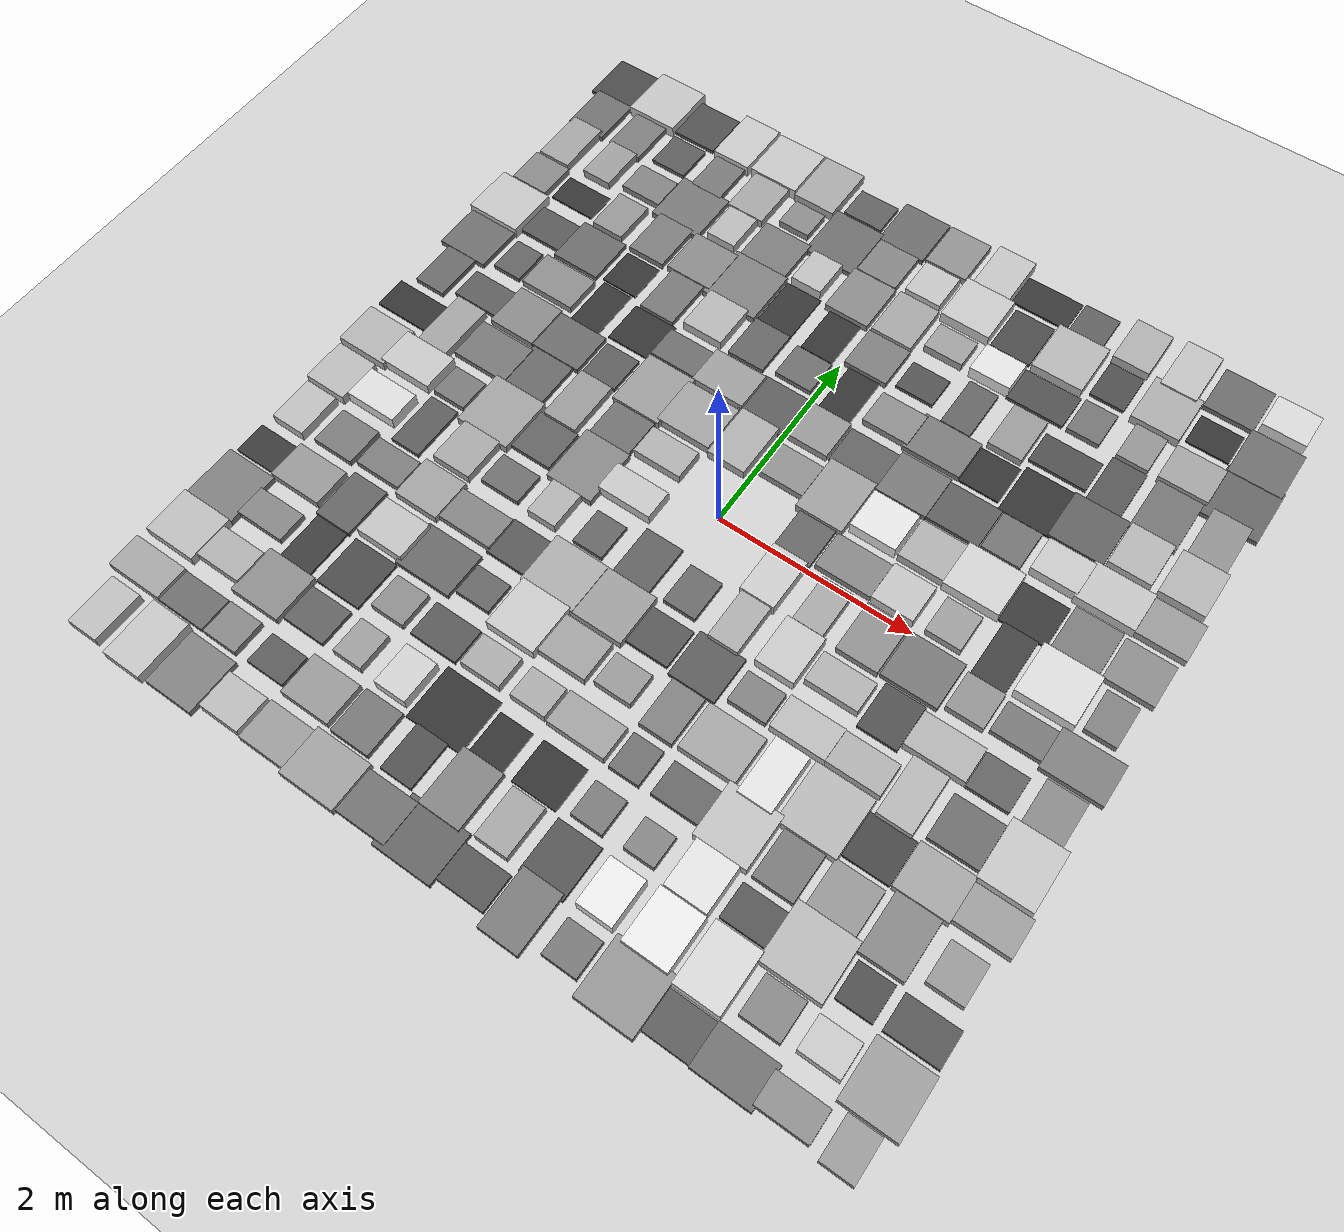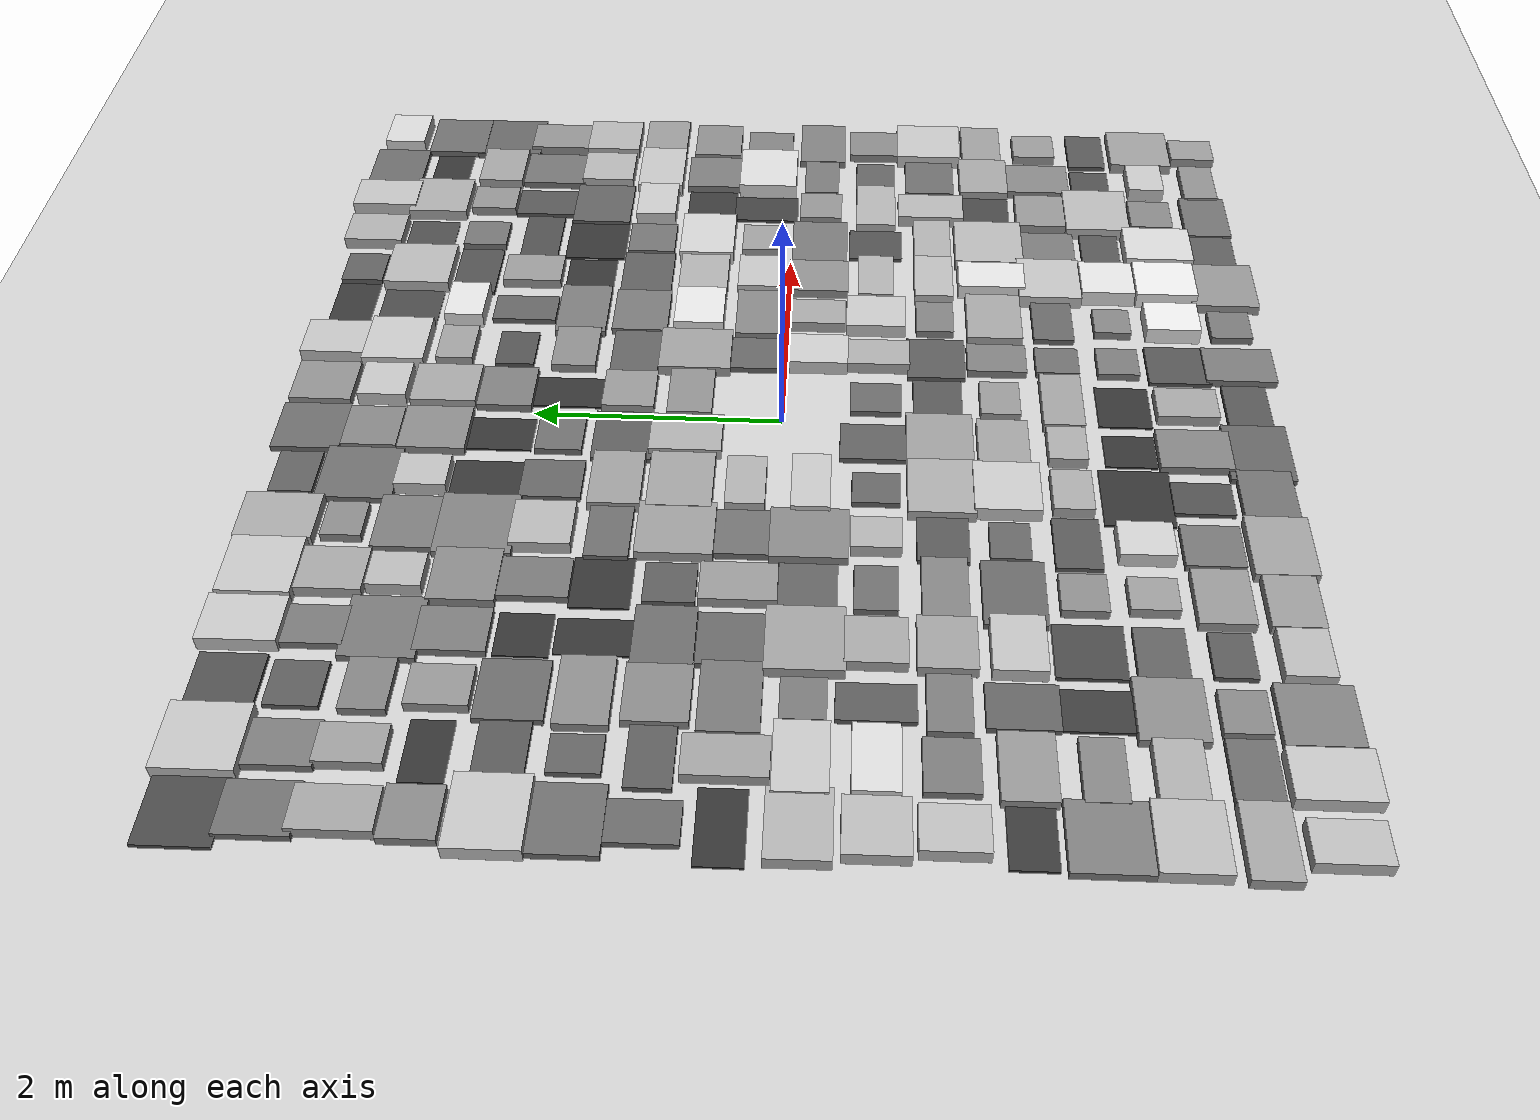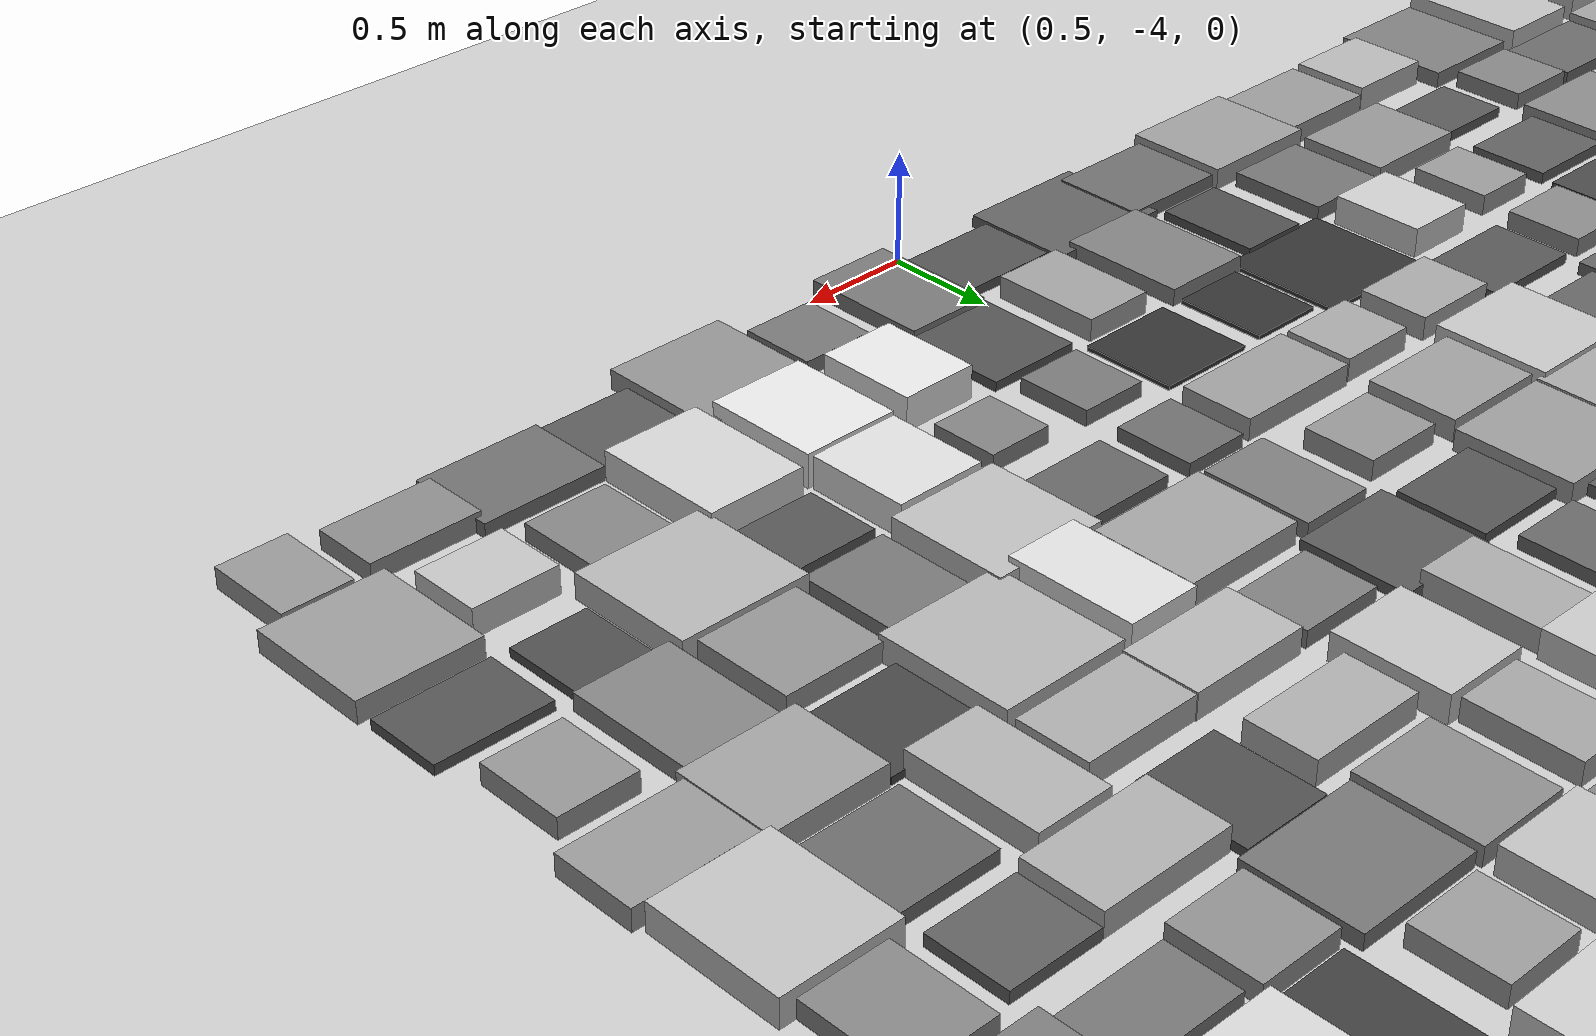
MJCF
<mujoco model="terrain_scene">
  <compiler angle="radian" coordinate="local" inertiafromgeom="true" />
  <option timestep="0.002" gravity="0.0 0.0 -9.81" iterations="50" solver="Newton" />
  <visual>
    <global offwidth="1920" offheight="1080" />
    <quality shadowsize="4096" />
    <headlight ambient="0.4 0.4 0.4" diffuse="0.6 0.6 0.6" />
  </visual>
  <asset>
    <texture name="grid_texture" type="2d" builtin="checker" rgb1="0.9 0.9 0.9" rgb2="0.7 0.7 0.7" width="512" height="512" />
    <material name="grid_material" texture="grid_texture" texrepeat="10 10" reflectance="0.1" />
  </asset>
  <worldbody>
    <geom name="ground" type="plane" size="8.0 8.0 0.1" pos="0 0 0" rgba="0.8 0.8 0.8 1.0" friction="1.0 0.005 0.0001" />
    <geom name="box_0" type="box" size="0.1643 0.2589 0.0585" pos="-3.7500 -3.7500 0.0585" rgba="0.723 0.723 0.723 1.000" friction="1.0 0.005 0.0001" />
    <geom name="box_1" type="box" size="0.2904 0.1706 0.0499" pos="-3.7500 -3.2500 0.0499" rgba="0.630 0.630 0.630 1.000" friction="1.0 0.005 0.0001" />
    <geom name="box_2" type="box" size="0.2701 0.2391 0.0580" pos="-3.7500 -2.7500 0.0580" rgba="0.717 0.717 0.717 1.000" friction="1.0 0.005 0.0001" />
    <geom name="box_3" type="box" size="0.2693 0.2919 0.0367" pos="-3.7500 -2.2500 0.0367" rgba="0.487 0.487 0.487 1.000" friction="1.0 0.005 0.0001" />
    <geom name="box_4" type="box" size="0.2385 0.1643 0.0123" pos="-3.7500 -1.7500 0.0123" rgba="0.225 0.225 0.225 1.000" friction="1.0 0.005 0.0001" />
    <geom name="box_5" type="box" size="0.1757 0.2347 0.0586" pos="-3.7500 -1.2500 0.0586" rgba="0.723 0.723 0.723 1.000" friction="1.0 0.005 0.0001" />
    <geom name="box_6" type="box" size="0.2199 0.2284 0.0575" pos="-3.7500 -0.7500 0.0575" rgba="0.711 0.711 0.711 1.000" friction="1.0 0.005 0.0001" />
    <geom name="box_7" type="box" size="0.2699 0.2238 0.0547" pos="-3.7500 -0.2500 0.0547" rgba="0.682 0.682 0.682 1.000" friction="1.0 0.005 0.0001" />
    <geom name="box_8" type="box" size="0.2897 0.1680 0.0100" pos="-3.7500 0.2500 0.0100" rgba="0.200 0.200 0.200 1.000" friction="1.0 0.005 0.0001" />
    <geom name="box_9" type="box" size="0.1632 0.2487 0.0288" pos="-3.7500 0.7500 0.0288" rgba="0.402 0.402 0.402 1.000" friction="1.0 0.005 0.0001" />
    <geom name="box_10" type="box" size="0.2661 0.2507 0.0306" pos="-3.7500 1.2500 0.0306" rgba="0.422 0.422 0.422 1.000" friction="1.0 0.005 0.0001" />
    <geom name="box_11" type="box" size="0.2848 0.2644 0.0615" pos="-3.7500 1.7500 0.0615" rgba="0.755 0.755 0.755 1.000" friction="1.0 0.005 0.0001" />
    <geom name="box_12" type="box" size="0.2046 0.1972 0.0397" pos="-3.7500 2.2500 0.0397" rgba="0.520 0.520 0.520 1.000" friction="1.0 0.005 0.0001" />
    <geom name="box_13" type="box" size="0.1722 0.2904 0.0493" pos="-3.7500 2.7500 0.0493" rgba="0.624 0.624 0.624 1.000" friction="1.0 0.005 0.0001" />
    <geom name="box_14" type="box" size="0.2075 0.2595 0.0313" pos="-3.7500 3.2500 0.0313" rgba="0.429 0.429 0.429 1.000" friction="1.0 0.005 0.0001" />
    <geom name="box_15" type="box" size="0.2904 0.2670 0.0176" pos="-3.7500 3.7500 0.0176" rgba="0.282 0.282 0.282 1.000" friction="1.0 0.005 0.0001" />
    <geom name="box_16" type="box" size="0.2065 0.2980 0.0613" pos="-3.2500 -3.7500 0.0613" rgba="0.752 0.752 0.752 1.000" friction="1.0 0.005 0.0001" />
    <geom name="box_17" type="box" size="0.2927 0.1678 0.0300" pos="-3.2500 -3.2500 0.0300" rgba="0.415 0.415 0.415 1.000" friction="1.0 0.005 0.0001" />
    <geom name="box_18" type="box" size="0.2456 0.1683 0.0534" pos="-3.2500 -2.7500 0.0534" rgba="0.667 0.667 0.667 1.000" friction="1.0 0.005 0.0001" />
    <geom name="box_19" type="box" size="0.2529 0.1518 0.0391" pos="-3.2500 -2.2500 0.0391" rgba="0.513 0.513 0.513 1.000" friction="1.0 0.005 0.0001" />
    <geom name="box_20" type="box" size="0.2738 0.1943 0.0449" pos="-3.2500 -1.7500 0.0449" rgba="0.576 0.576 0.576 1.000" friction="1.0 0.005 0.0001" />
    <geom name="box_21" type="box" size="0.2163 0.1953 0.0349" pos="-3.2500 -1.2500 0.0349" rgba="0.469 0.469 0.469 1.000" friction="1.0 0.005 0.0001" />
    <geom name="box_22" type="box" size="0.2672 0.1666 0.0696" pos="-3.2500 -0.7500 0.0696" rgba="0.842 0.842 0.842 1.000" friction="1.0 0.005 0.0001" />
    <geom name="box_23" type="box" size="0.2819 0.1926 0.0617" pos="-3.2500 -0.2500 0.0617" rgba="0.757 0.757 0.757 1.000" friction="1.0 0.005 0.0001" />
    <geom name="box_24" type="box" size="0.1660 0.2999 0.0493" pos="-3.2500 0.2500 0.0493" rgba="0.623 0.623 0.623 1.000" friction="1.0 0.005 0.0001" />
    <geom name="box_25" type="box" size="0.2475 0.1636 0.0245" pos="-3.2500 0.7500 0.0245" rgba="0.356 0.356 0.356 1.000" friction="1.0 0.005 0.0001" />
    <geom name="box_26" type="box" size="0.1543 0.1861 0.0264" pos="-3.2500 1.2500 0.0264" rgba="0.377 0.377 0.377 1.000" friction="1.0 0.005 0.0001" />
    <geom name="box_27" type="box" size="0.2665 0.1797 0.0227" pos="-3.2500 1.7500 0.0227" rgba="0.337 0.337 0.337 1.000" friction="1.0 0.005 0.0001" />
    <geom name="box_28" type="box" size="0.2484 0.1554 0.0100" pos="-3.2500 2.2500 0.0100" rgba="0.200 0.200 0.200 1.000" friction="1.0 0.005 0.0001" />
    <geom name="box_29" type="box" size="0.1577 0.2409 0.0474" pos="-3.2500 2.7500 0.0474" rgba="0.602 0.602 0.602 1.000" friction="1.0 0.005 0.0001" />
    <geom name="box_30" type="box" size="0.1858 0.2774 0.0355" pos="-3.2500 3.2500 0.0355" rgba="0.474 0.474 0.474 1.000" friction="1.0 0.005 0.0001" />
    <geom name="box_31" type="box" size="0.2701 0.2892 0.0608" pos="-3.2500 3.7500 0.0608" rgba="0.747 0.747 0.747 1.000" friction="1.0 0.005 0.0001" />
    <geom name="box_32" type="box" size="0.2547 0.2757 0.0374" pos="-2.7500 -3.7500 0.0374" rgba="0.495 0.495 0.495 1.000" friction="1.0 0.005 0.0001" />
    <geom name="box_33" type="box" size="0.1803 0.1687 0.0393" pos="-2.7500 -3.2500 0.0393" rgba="0.515 0.515 0.515 1.000" friction="1.0 0.005 0.0001" />
    <geom name="box_34" type="box" size="0.2618 0.2445 0.0416" pos="-2.7500 -2.7500 0.0416" rgba="0.540 0.540 0.540 1.000" friction="1.0 0.005 0.0001" />
    <geom name="box_35" type="box" size="0.1733 0.2602 0.0134" pos="-2.7500 -2.2500 0.0134" rgba="0.237 0.237 0.237 1.000" friction="1.0 0.005 0.0001" />
    <geom name="box_36" type="box" size="0.1906 0.2565 0.0266" pos="-2.7500 -1.7500 0.0266" rgba="0.379 0.379 0.379 1.000" friction="1.0 0.005 0.0001" />
    <geom name="box_37" type="box" size="0.2417 0.1582 0.0354" pos="-2.7500 -1.2500 0.0354" rgba="0.473 0.473 0.473 1.000" friction="1.0 0.005 0.0001" />
    <geom name="box_38" type="box" size="0.1564 0.2826 0.0237" pos="-2.7500 -0.7500 0.0237" rgba="0.348 0.348 0.348 1.000" friction="1.0 0.005 0.0001" />
    <geom name="box_39" type="box" size="0.1760 0.1638 0.0343" pos="-2.7500 -0.2500 0.0343" rgba="0.462 0.462 0.462 1.000" friction="1.0 0.005 0.0001" />
    <geom name="box_40" type="box" size="0.2970 0.2188 0.0339" pos="-2.7500 0.2500 0.0339" rgba="0.457 0.457 0.457 1.000" friction="1.0 0.005 0.0001" />
    <geom name="box_41" type="box" size="0.2455 0.2359 0.0401" pos="-2.7500 0.7500 0.0401" rgba="0.525 0.525 0.525 1.000" friction="1.0 0.005 0.0001" />
    <geom name="box_42" type="box" size="0.2919 0.1952 0.0416" pos="-2.7500 1.2500 0.0416" rgba="0.540 0.540 0.540 1.000" friction="1.0 0.005 0.0001" />
    <geom name="box_43" type="box" size="0.2550 0.2474 0.0292" pos="-2.7500 1.7500 0.0292" rgba="0.407 0.407 0.407 1.000" friction="1.0 0.005 0.0001" />
    <geom name="box_44" type="box" size="0.1723 0.2263 0.0444" pos="-2.7500 2.2500 0.0444" rgba="0.570 0.570 0.570 1.000" friction="1.0 0.005 0.0001" />
    <geom name="box_45" type="box" size="0.2211 0.1679 0.0378" pos="-2.7500 2.7500 0.0378" rgba="0.500 0.500 0.500 1.000" friction="1.0 0.005 0.0001" />
    <geom name="box_46" type="box" size="0.1917 0.1957 0.0241" pos="-2.7500 3.2500 0.0241" rgba="0.352 0.352 0.352 1.000" friction="1.0 0.005 0.0001" />
    <geom name="box_47" type="box" size="0.2416 0.2452 0.0200" pos="-2.7500 3.7500 0.0200" rgba="0.308 0.308 0.308 1.000" friction="1.0 0.005 0.0001" />
    <geom name="box_48" type="box" size="0.2113 0.1826 0.0575" pos="-2.2500 -3.7500 0.0575" rgba="0.711 0.711 0.711 1.000" friction="1.0 0.005 0.0001" />
    <geom name="box_49" type="box" size="0.1976 0.1554 0.0235" pos="-2.2500 -3.2500 0.0235" rgba="0.345 0.345 0.345 1.000" friction="1.0 0.005 0.0001" />
    <geom name="box_50" type="box" size="0.2211 0.1838 0.0261" pos="-2.2500 -2.7500 0.0261" rgba="0.373 0.373 0.373 1.000" friction="1.0 0.005 0.0001" />
    <geom name="box_51" type="box" size="0.2349 0.2553 0.0179" pos="-2.2500 -2.2500 0.0179" rgba="0.285 0.285 0.285 1.000" friction="1.0 0.005 0.0001" />
    <geom name="box_52" type="box" size="0.2479 0.1974 0.0601" pos="-2.2500 -1.7500 0.0601" rgba="0.740 0.740 0.740 1.000" friction="1.0 0.005 0.0001" />
    <geom name="box_53" type="box" size="0.2324 0.2147 0.0488" pos="-2.2500 -1.2500 0.0488" rgba="0.618 0.618 0.618 1.000" friction="1.0 0.005 0.0001" />
    <geom name="box_54" type="box" size="0.2041 0.2269 0.0509" pos="-2.2500 -0.7500 0.0509" rgba="0.640 0.640 0.640 1.000" friction="1.0 0.005 0.0001" />
    <geom name="box_55" type="box" size="0.2830 0.2882 0.0488" pos="-2.2500 -0.2500 0.0488" rgba="0.617 0.617 0.617 1.000" friction="1.0 0.005 0.0001" />
    <geom name="box_56" type="box" size="0.2280 0.2700 0.0284" pos="-2.2500 0.2500 0.0284" rgba="0.398 0.398 0.398 1.000" friction="1.0 0.005 0.0001" />
    <geom name="box_57" type="box" size="0.2756 0.2241 0.0297" pos="-2.2500 0.7500 0.0297" rgba="0.412 0.412 0.412 1.000" friction="1.0 0.005 0.0001" />
    <geom name="box_58" type="box" size="0.1608 0.2763 0.0100" pos="-2.2500 1.2500 0.0100" rgba="0.200 0.200 0.200 1.000" friction="1.0 0.005 0.0001" />
    <geom name="box_59" type="box" size="0.1921 0.2001 0.0100" pos="-2.2500 1.7500 0.0100" rgba="0.200 0.200 0.200 1.000" friction="1.0 0.005 0.0001" />
    <geom name="box_60" type="box" size="0.1971 0.2614 0.0352" pos="-2.2500 2.2500 0.0352" rgba="0.471 0.471 0.471 1.000" friction="1.0 0.005 0.0001" />
    <geom name="box_61" type="box" size="0.2741 0.2785 0.0341" pos="-2.2500 2.7500 0.0341" rgba="0.459 0.459 0.459 1.000" friction="1.0 0.005 0.0001" />
    <geom name="box_62" type="box" size="0.1730 0.2401 0.0343" pos="-2.2500 3.2500 0.0343" rgba="0.461 0.461 0.461 1.000" friction="1.0 0.005 0.0001" />
    <geom name="box_63" type="box" size="0.2047 0.2938 0.0623" pos="-2.2500 3.7500 0.0623" rgba="0.763 0.763 0.763 1.000" friction="1.0 0.005 0.0001" />
    <geom name="box_64" type="box" size="0.2658 0.1966 0.0468" pos="-1.7500 -3.7500 0.0468" rgba="0.596 0.596 0.596 1.000" friction="1.0 0.005 0.0001" />
    <geom name="box_65" type="box" size="0.2558 0.2082 0.0455" pos="-1.7500 -3.2500 0.0455" rgba="0.582 0.582 0.582 1.000" friction="1.0 0.005 0.0001" />
    <geom name="box_66" type="box" size="0.1516 0.1814 0.0471" pos="-1.7500 -2.7500 0.0471" rgba="0.599 0.599 0.599 1.000" friction="1.0 0.005 0.0001" />
    <geom name="box_67" type="box" size="0.1746 0.1749 0.0415" pos="-1.7500 -2.2500 0.0415" rgba="0.539 0.539 0.539 1.000" friction="1.0 0.005 0.0001" />
    <geom name="box_68" type="box" size="0.2984 0.2334 0.0284" pos="-1.7500 -1.7500 0.0284" rgba="0.398 0.398 0.398 1.000" friction="1.0 0.005 0.0001" />
    <geom name="box_69" type="box" size="0.2985 0.1712 0.0383" pos="-1.7500 -1.2500 0.0383" rgba="0.505 0.505 0.505 1.000" friction="1.0 0.005 0.0001" />
    <geom name="box_70" type="box" size="0.2089 0.1620 0.0305" pos="-1.7500 -0.7500 0.0305" rgba="0.421 0.421 0.421 1.000" friction="1.0 0.005 0.0001" />
    <geom name="box_71" type="box" size="0.2151 0.2204 0.0265" pos="-1.7500 -0.2500 0.0265" rgba="0.378 0.378 0.378 1.000" friction="1.0 0.005 0.0001" />
    <geom name="box_72" type="box" size="0.1771 0.2861 0.0460" pos="-1.7500 0.2500 0.0460" rgba="0.588 0.588 0.588 1.000" friction="1.0 0.005 0.0001" />
    <geom name="box_73" type="box" size="0.1849 0.1938 0.0245" pos="-1.7500 0.7500 0.0245" rgba="0.356 0.356 0.356 1.000" friction="1.0 0.005 0.0001" />
    <geom name="box_74" type="box" size="0.2380 0.2240 0.0100" pos="-1.7500 1.2500 0.0100" rgba="0.200 0.200 0.200 1.000" friction="1.0 0.005 0.0001" />
    <geom name="box_75" type="box" size="0.1866 0.2765 0.0337" pos="-1.7500 1.7500 0.0337" rgba="0.455 0.455 0.455 1.000" friction="1.0 0.005 0.0001" />
    <geom name="box_76" type="box" size="0.2474 0.2505 0.0402" pos="-1.7500 2.2500 0.0402" rgba="0.525 0.525 0.525 1.000" friction="1.0 0.005 0.0001" />
    <geom name="box_77" type="box" size="0.1587 0.2050 0.0569" pos="-1.7500 2.7500 0.0569" rgba="0.705 0.705 0.705 1.000" friction="1.0 0.005 0.0001" />
    <geom name="box_78" type="box" size="0.2008 0.2767 0.0500" pos="-1.7500 3.2500 0.0500" rgba="0.631 0.631 0.631 1.000" friction="1.0 0.005 0.0001" />
    <geom name="box_79" type="box" size="0.2653 0.2778 0.0613" pos="-1.7500 3.7500 0.0613" rgba="0.752 0.752 0.752 1.000" friction="1.0 0.005 0.0001" />
    <geom name="box_80" type="box" size="0.2864 0.2381 0.0484" pos="-1.2500 -3.7500 0.0484" rgba="0.614 0.614 0.614 1.000" friction="1.0 0.005 0.0001" />
    <geom name="box_81" type="box" size="0.2011 0.2248 0.0334" pos="-1.2500 -3.2500 0.0334" rgba="0.452 0.452 0.452 1.000" friction="1.0 0.005 0.0001" />
    <geom name="box_82" type="box" size="0.1657 0.2098 0.0657" pos="-1.2500 -2.7500 0.0657" rgba="0.799 0.799 0.799 1.000" friction="1.0 0.005 0.0001" />
    <geom name="box_83" type="box" size="0.2446 0.1766 0.0228" pos="-1.2500 -2.2500 0.0228" rgba="0.338 0.338 0.338 1.000" friction="1.0 0.005 0.0001" />
    <geom name="box_84" type="box" size="0.1787 0.1537 0.0278" pos="-1.2500 -1.7500 0.0278" rgba="0.391 0.391 0.391 1.000" friction="1.0 0.005 0.0001" />
    <geom name="box_85" type="box" size="0.2172 0.1961 0.0228" pos="-1.2500 -1.2500 0.0228" rgba="0.337 0.337 0.337 1.000" friction="1.0 0.005 0.0001" />
    <geom name="box_86" type="box" size="0.1511 0.1917 0.0546" pos="-1.2500 -0.7500 0.0546" rgba="0.680 0.680 0.680 1.000" friction="1.0 0.005 0.0001" />
    <geom name="box_87" type="box" size="0.2451 0.2973 0.0398" pos="-1.2500 -0.2500 0.0398" rgba="0.521 0.521 0.521 1.000" friction="1.0 0.005 0.0001" />
    <geom name="box_88" type="box" size="0.2216 0.2642 0.0315" pos="-1.2500 0.2500 0.0315" rgba="0.431 0.431 0.431 1.000" friction="1.0 0.005 0.0001" />
    <geom name="box_89" type="box" size="0.2581 0.2945 0.0471" pos="-1.2500 0.7500 0.0471" rgba="0.600 0.600 0.600 1.000" friction="1.0 0.005 0.0001" />
    <geom name="box_90" type="box" size="0.2800 0.1671 0.0300" pos="-1.2500 1.2500 0.0300" rgba="0.415 0.415 0.415 1.000" friction="1.0 0.005 0.0001" />
    <geom name="box_91" type="box" size="0.2160 0.2330 0.0559" pos="-1.2500 1.7500 0.0559" rgba="0.694 0.694 0.694 1.000" friction="1.0 0.005 0.0001" />
    <geom name="box_92" type="box" size="0.2955 0.2977 0.0368" pos="-1.2500 2.2500 0.0368" rgba="0.489 0.489 0.489 1.000" friction="1.0 0.005 0.0001" />
    <geom name="box_93" type="box" size="0.2601 0.2625 0.0355" pos="-1.2500 2.7500 0.0355" rgba="0.474 0.474 0.474 1.000" friction="1.0 0.005 0.0001" />
    <geom name="box_94" type="box" size="0.1686 0.1561 0.0405" pos="-1.2500 3.2500 0.0405" rgba="0.529 0.529 0.529 1.000" friction="1.0 0.005 0.0001" />
    <geom name="box_95" type="box" size="0.2235 0.2978 0.0511" pos="-1.2500 3.7500 0.0511" rgba="0.642 0.642 0.642 1.000" friction="1.0 0.005 0.0001" />
    <geom name="box_96" type="box" size="0.2967 0.2117 0.0315" pos="-0.7500 -3.7500 0.0315" rgba="0.432 0.432 0.432 1.000" friction="1.0 0.005 0.0001" />
    <geom name="box_97" type="box" size="0.1627 0.2333 0.0200" pos="-0.7500 -3.2500 0.0200" rgba="0.308 0.308 0.308 1.000" friction="1.0 0.005 0.0001" />
    <geom name="box_98" type="box" size="0.2887 0.2734 0.0100" pos="-0.7500 -2.7500 0.0100" rgba="0.200 0.200 0.200 1.000" friction="1.0 0.005 0.0001" />
    <geom name="box_99" type="box" size="0.2059 0.1573 0.0521" pos="-0.7500 -2.2500 0.0521" rgba="0.654 0.654 0.654 1.000" friction="1.0 0.005 0.0001" />
    <geom name="box_100" type="box" size="0.2513 0.2570 0.0629" pos="-0.7500 -1.7500 0.0629" rgba="0.770 0.770 0.770 1.000" friction="1.0 0.005 0.0001" />
    <geom name="box_101" type="box" size="0.2798 0.2609 0.0523" pos="-0.7500 -1.2500 0.0523" rgba="0.656 0.656 0.656 1.000" friction="1.0 0.005 0.0001" />
    <geom name="box_102" type="box" size="0.1573 0.1852 0.0271" pos="-0.7500 -0.7500 0.0271" rgba="0.384 0.384 0.384 1.000" friction="1.0 0.005 0.0001" />
    <geom name="box_103" type="box" size="0.2787 0.1507 0.0619" pos="-0.7500 -0.2500 0.0619" rgba="0.759 0.759 0.759 1.000" friction="1.0 0.005 0.0001" />
    <geom name="box_104" type="box" size="0.2516 0.1544 0.0535" pos="-0.7500 0.2500 0.0535" rgba="0.668 0.668 0.668 1.000" friction="1.0 0.005 0.0001" />
    <geom name="box_105" type="box" size="0.2843 0.2507 0.0488" pos="-0.7500 0.7500 0.0488" rgba="0.618 0.618 0.618 1.000" friction="1.0 0.005 0.0001" />
    <geom name="box_106" type="box" size="0.2779 0.2022 0.0473" pos="-0.7500 1.2500 0.0473" rgba="0.602 0.602 0.602 1.000" friction="1.0 0.005 0.0001" />
    <geom name="box_107" type="box" size="0.1948 0.2385 0.0271" pos="-0.7500 1.7500 0.0271" rgba="0.384 0.384 0.384 1.000" friction="1.0 0.005 0.0001" />
    <geom name="box_108" type="box" size="0.1912 0.2830 0.0108" pos="-0.7500 2.2500 0.0108" rgba="0.208 0.208 0.208 1.000" friction="1.0 0.005 0.0001" />
    <geom name="box_109" type="box" size="0.1627 0.2013 0.0590" pos="-0.7500 2.7500 0.0590" rgba="0.728 0.728 0.728 1.000" friction="1.0 0.005 0.0001" />
    <geom name="box_110" type="box" size="0.2711 0.2998 0.0305" pos="-0.7500 3.2500 0.0305" rgba="0.420 0.420 0.420 1.000" friction="1.0 0.005 0.0001" />
    <geom name="box_111" type="box" size="0.2112 0.1705 0.0255" pos="-0.7500 3.7500 0.0255" rgba="0.367 0.367 0.367 1.000" friction="1.0 0.005 0.0001" />
    <geom name="box_112" type="box" size="0.2996 0.2551 0.0274" pos="-0.2500 -3.7500 0.0274" rgba="0.387 0.387 0.387 1.000" friction="1.0 0.005 0.0001" />
    <geom name="box_113" type="box" size="0.2089 0.2873 0.0383" pos="-0.2500 -3.2500 0.0383" rgba="0.505 0.505 0.505 1.000" friction="1.0 0.005 0.0001" />
    <geom name="box_114" type="box" size="0.1702 0.2048 0.0100" pos="-0.2500 -2.7500 0.0100" rgba="0.200 0.200 0.200 1.000" friction="1.0 0.005 0.0001" />
    <geom name="box_115" type="box" size="0.1803 0.1527 0.0522" pos="-0.2500 -2.2500 0.0522" rgba="0.654 0.654 0.654 1.000" friction="1.0 0.005 0.0001" />
    <geom name="box_116" type="box" size="0.2452 0.2015 0.0487" pos="-0.2500 -1.7500 0.0487" rgba="0.617 0.617 0.617 1.000" friction="1.0 0.005 0.0001" />
    <geom name="box_117" type="box" size="0.2939 0.2628 0.0477" pos="-0.2500 -1.2500 0.0477" rgba="0.606 0.606 0.606 1.000" friction="1.0 0.005 0.0001" />
    <geom name="box_118" type="box" size="0.1927 0.2845 0.0256" pos="-0.2500 -0.7500 0.0256" rgba="0.368 0.368 0.368 1.000" friction="1.0 0.005 0.0001" />
    <geom name="box_119" type="box" size="0.1988 0.2864 0.0534" pos="-0.2500 0.7500 0.0534" rgba="0.667 0.667 0.667 1.000" friction="1.0 0.005 0.0001" />
    <geom name="box_120" type="box" size="0.2613 0.2386 0.0244" pos="-0.2500 1.2500 0.0244" rgba="0.356 0.356 0.356 1.000" friction="1.0 0.005 0.0001" />
    <geom name="box_121" type="box" size="0.1949 0.1862 0.0304" pos="-0.2500 1.7500 0.0304" rgba="0.420 0.420 0.420 1.000" friction="1.0 0.005 0.0001" />
    <geom name="box_122" type="box" size="0.1733 0.2811 0.0100" pos="-0.2500 2.2500 0.0100" rgba="0.200 0.200 0.200 1.000" friction="1.0 0.005 0.0001" />
    <geom name="box_123" type="box" size="0.2342 0.2688 0.0406" pos="-0.2500 2.7500 0.0406" rgba="0.529 0.529 0.529 1.000" friction="1.0 0.005 0.0001" />
    <geom name="box_124" type="box" size="0.2158 0.2214 0.0386" pos="-0.2500 3.2500 0.0386" rgba="0.508 0.508 0.508 1.000" friction="1.0 0.005 0.0001" />
    <geom name="box_125" type="box" size="0.2512 0.2722 0.0295" pos="-0.2500 3.7500 0.0295" rgba="0.410 0.410 0.410 1.000" friction="1.0 0.005 0.0001" />
    <geom name="box_126" type="box" size="0.2681 0.1778 0.0217" pos="0.2500 -3.7500 0.0217" rgba="0.326 0.326 0.326 1.000" friction="1.0 0.005 0.0001" />
    <geom name="box_127" type="box" size="0.1653 0.2479 0.0498" pos="0.2500 -3.2500 0.0498" rgba="0.629 0.629 0.629 1.000" friction="1.0 0.005 0.0001" />
    <geom name="box_128" type="box" size="0.2269 0.2149 0.0100" pos="0.2500 -2.7500 0.0100" rgba="0.200 0.200 0.200 1.000" friction="1.0 0.005 0.0001" />
    <geom name="box_129" type="box" size="0.2940 0.1655 0.0488" pos="0.2500 -2.2500 0.0488" rgba="0.618 0.618 0.618 1.000" friction="1.0 0.005 0.0001" />
    <geom name="box_130" type="box" size="0.1869 0.1598 0.0456" pos="0.2500 -1.7500 0.0456" rgba="0.584 0.584 0.584 1.000" friction="1.0 0.005 0.0001" />
    <geom name="box_131" type="box" size="0.2274 0.1969 0.0222" pos="0.2500 -1.2500 0.0222" rgba="0.332 0.332 0.332 1.000" friction="1.0 0.005 0.0001" />
    <geom name="box_132" type="box" size="0.1667 0.2077 0.0288" pos="0.2500 -0.7500 0.0288" rgba="0.402 0.402 0.402 1.000" friction="1.0 0.005 0.0001" />
    <geom name="box_133" type="box" size="0.2547 0.1811 0.0427" pos="0.2500 0.7500 0.0427" rgba="0.552 0.552 0.552 1.000" friction="1.0 0.005 0.0001" />
    <geom name="box_134" type="box" size="0.2091 0.2125 0.0450" pos="0.2500 1.2500 0.0450" rgba="0.577 0.577 0.577 1.000" friction="1.0 0.005 0.0001" />
    <geom name="box_135" type="box" size="0.1668 0.2794 0.0100" pos="0.2500 1.7500 0.0100" rgba="0.200 0.200 0.200 1.000" friction="1.0 0.005 0.0001" />
    <geom name="box_136" type="box" size="0.2262 0.2234 0.0360" pos="0.2500 2.2500 0.0360" rgba="0.480 0.480 0.480 1.000" friction="1.0 0.005 0.0001" />
    <geom name="box_137" type="box" size="0.2147 0.2671 0.0500" pos="0.2500 2.7500 0.0500" rgba="0.631 0.631 0.631 1.000" friction="1.0 0.005 0.0001" />
    <geom name="box_138" type="box" size="0.1891 0.1984 0.0608" pos="0.2500 3.2500 0.0608" rgba="0.747 0.747 0.747 1.000" friction="1.0 0.005 0.0001" />
    <geom name="box_139" type="box" size="0.2220 0.2525 0.0427" pos="0.2500 3.7500 0.0427" rgba="0.552 0.552 0.552 1.000" friction="1.0 0.005 0.0001" />
    <geom name="box_140" type="box" size="0.1996 0.2896 0.0348" pos="0.7500 -3.7500 0.0348" rgba="0.467 0.467 0.467 1.000" friction="1.0 0.005 0.0001" />
    <geom name="box_141" type="box" size="0.2191 0.2567 0.0214" pos="0.7500 -3.2500 0.0214" rgba="0.323 0.323 0.323 1.000" friction="1.0 0.005 0.0001" />
    <geom name="box_142" type="box" size="0.1571 0.1707 0.0349" pos="0.7500 -2.7500 0.0349" rgba="0.468 0.468 0.468 1.000" friction="1.0 0.005 0.0001" />
    <geom name="box_143" type="box" size="0.1514 0.1782 0.0309" pos="0.7500 -2.2500 0.0309" rgba="0.425 0.425 0.425 1.000" friction="1.0 0.005 0.0001" />
    <geom name="box_144" type="box" size="0.1666 0.2430 0.0370" pos="0.7500 -1.7500 0.0370" rgba="0.491 0.491 0.491 1.000" friction="1.0 0.005 0.0001" />
    <geom name="box_145" type="box" size="0.2354 0.2385 0.0241" pos="0.7500 -1.2500 0.0241" rgba="0.352 0.352 0.352 1.000" friction="1.0 0.005 0.0001" />
    <geom name="box_146" type="box" size="0.1507 0.2780 0.0530" pos="0.7500 -0.7500 0.0530" rgba="0.663 0.663 0.663 1.000" friction="1.0 0.005 0.0001" />
    <geom name="box_147" type="box" size="0.1744 0.2659 0.0637" pos="0.7500 -0.2500 0.0637" rgba="0.779 0.779 0.779 1.000" friction="1.0 0.005 0.0001" />
    <geom name="box_148" type="box" size="0.1881 0.2878 0.0274" pos="0.7500 0.2500 0.0274" rgba="0.388 0.388 0.388 1.000" friction="1.0 0.005 0.0001" />
    <geom name="box_149" type="box" size="0.2405 0.2977 0.0481" pos="0.7500 0.7500 0.0481" rgba="0.610 0.610 0.610 1.000" friction="1.0 0.005 0.0001" />
    <geom name="box_150" type="box" size="0.2720 0.1978 0.0264" pos="0.7500 1.2500 0.0264" rgba="0.376 0.376 0.376 1.000" friction="1.0 0.005 0.0001" />
    <geom name="box_151" type="box" size="0.2401 0.1825 0.0413" pos="0.7500 1.7500 0.0413" rgba="0.537 0.537 0.537 1.000" friction="1.0 0.005 0.0001" />
    <geom name="box_152" type="box" size="0.1976 0.1617 0.0208" pos="0.7500 2.2500 0.0208" rgba="0.316 0.316 0.316 1.000" friction="1.0 0.005 0.0001" />
    <geom name="box_153" type="box" size="0.2020 0.1529 0.0480" pos="0.7500 2.7500 0.0480" rgba="0.609 0.609 0.609 1.000" friction="1.0 0.005 0.0001" />
    <geom name="box_154" type="box" size="0.2588 0.2562 0.0621" pos="0.7500 3.2500 0.0621" rgba="0.761 0.761 0.761 1.000" friction="1.0 0.005 0.0001" />
    <geom name="box_155" type="box" size="0.1976 0.2835 0.0606" pos="0.7500 3.7500 0.0606" rgba="0.745 0.745 0.745 1.000" friction="1.0 0.005 0.0001" />
    <geom name="box_156" type="box" size="0.1689 0.1716 0.0342" pos="1.2500 -3.7500 0.0342" rgba="0.461 0.461 0.461 1.000" friction="1.0 0.005 0.0001" />
    <geom name="box_157" type="box" size="0.1759 0.2261 0.0750" pos="1.2500 -3.2500 0.0750" rgba="0.900 0.900 0.900 1.000" friction="1.0 0.005 0.0001" />
    <geom name="box_158" type="box" size="0.1506 0.1525 0.0386" pos="1.2500 -2.7500 0.0386" rgba="0.508 0.508 0.508 1.000" friction="1.0 0.005 0.0001" />
    <geom name="box_159" type="box" size="0.2377 0.1690 0.0280" pos="1.2500 -2.2500 0.0280" rgba="0.394 0.394 0.394 1.000" friction="1.0 0.005 0.0001" />
    <geom name="box_160" type="box" size="0.2821 0.2304 0.0501" pos="1.2500 -1.7500 0.0501" rgba="0.632 0.632 0.632 1.000" friction="1.0 0.005 0.0001" />
    <geom name="box_161" type="box" size="0.1910 0.1576 0.0374" pos="1.2500 -1.2500 0.0374" rgba="0.495 0.495 0.495 1.000" friction="1.0 0.005 0.0001" />
    <geom name="box_162" type="box" size="0.1942 0.2495 0.0621" pos="1.2500 -0.7500 0.0621" rgba="0.761 0.761 0.761 1.000" friction="1.0 0.005 0.0001" />
    <geom name="box_163" type="box" size="0.1527 0.2394 0.0509" pos="1.2500 -0.2500 0.0509" rgba="0.640 0.640 0.640 1.000" friction="1.0 0.005 0.0001" />
    <geom name="box_164" type="box" size="0.2811 0.1880 0.0395" pos="1.2500 0.2500 0.0395" rgba="0.518 0.518 0.518 1.000" friction="1.0 0.005 0.0001" />
    <geom name="box_165" type="box" size="0.2330 0.2094 0.0727" pos="1.2500 0.7500 0.0727" rgba="0.875 0.875 0.875 1.000" friction="1.0 0.005 0.0001" />
    <geom name="box_166" type="box" size="0.2589 0.2350 0.0342" pos="1.2500 1.2500 0.0342" rgba="0.461 0.461 0.461 1.000" friction="1.0 0.005 0.0001" />
    <geom name="box_167" type="box" size="0.2975 0.2129 0.0350" pos="1.2500 1.7500 0.0350" rgba="0.470 0.470 0.470 1.000" friction="1.0 0.005 0.0001" />
    <geom name="box_168" type="box" size="0.1519 0.2694 0.0269" pos="1.2500 2.2500 0.0269" rgba="0.382 0.382 0.382 1.000" friction="1.0 0.005 0.0001" />
    <geom name="box_169" type="box" size="0.2112 0.1641 0.0720" pos="1.2500 2.7500 0.0720" rgba="0.868 0.868 0.868 1.000" friction="1.0 0.005 0.0001" />
    <geom name="box_170" type="box" size="0.2093 0.2524 0.0175" pos="1.2500 3.2500 0.0175" rgba="0.281 0.281 0.281 1.000" friction="1.0 0.005 0.0001" />
    <geom name="box_171" type="box" size="0.2942 0.1768 0.0112" pos="1.2500 3.7500 0.0112" rgba="0.213 0.213 0.213 1.000" friction="1.0 0.005 0.0001" />
    <geom name="box_172" type="box" size="0.2788 0.2869 0.0445" pos="1.7500 -3.7500 0.0445" rgba="0.571 0.571 0.571 1.000" friction="1.0 0.005 0.0001" />
    <geom name="box_173" type="box" size="0.2205 0.2600 0.0750" pos="1.7500 -3.2500 0.0750" rgba="0.900 0.900 0.900 1.000" friction="1.0 0.005 0.0001" />
    <geom name="box_174" type="box" size="0.2069 0.2276 0.0718" pos="1.7500 -2.7500 0.0718" rgba="0.866 0.866 0.866 1.000" friction="1.0 0.005 0.0001" />
    <geom name="box_175" type="box" size="0.2597 0.2674 0.0600" pos="1.7500 -2.2500 0.0600" rgba="0.738 0.738 0.738 1.000" friction="1.0 0.005 0.0001" />
    <geom name="box_176" type="box" size="0.1657 0.2856 0.0720" pos="1.7500 -1.7500 0.0720" rgba="0.868 0.868 0.868 1.000" friction="1.0 0.005 0.0001" />
    <geom name="box_177" type="box" size="0.2697 0.1650 0.0575" pos="1.7500 -1.2500 0.0575" rgba="0.712 0.712 0.712 1.000" friction="1.0 0.005 0.0001" />
    <geom name="box_178" type="box" size="0.2615 0.1535 0.0539" pos="1.7500 -0.7500 0.0539" rgba="0.673 0.673 0.673 1.000" friction="1.0 0.005 0.0001" />
    <geom name="box_179" type="box" size="0.2066 0.2579 0.0425" pos="1.7500 -0.2500 0.0425" rgba="0.550 0.550 0.550 1.000" friction="1.0 0.005 0.0001" />
    <geom name="box_180" type="box" size="0.2092 0.1979 0.0610" pos="1.7500 0.2500 0.0610" rgba="0.749 0.749 0.749 1.000" friction="1.0 0.005 0.0001" />
    <geom name="box_181" type="box" size="0.2371 0.2114 0.0535" pos="1.7500 0.7500 0.0535" rgba="0.668 0.668 0.668 1.000" friction="1.0 0.005 0.0001" />
    <geom name="box_182" type="box" size="0.2903 0.2201 0.0248" pos="1.7500 1.2500 0.0248" rgba="0.360 0.360 0.360 1.000" friction="1.0 0.005 0.0001" />
    <geom name="box_183" type="box" size="0.2066 0.2091 0.0100" pos="1.7500 1.7500 0.0100" rgba="0.200 0.200 0.200 1.000" friction="1.0 0.005 0.0001" />
    <geom name="box_184" type="box" size="0.1744 0.2527 0.0457" pos="1.7500 2.2500 0.0457" rgba="0.585 0.585 0.585 1.000" friction="1.0 0.005 0.0001" />
    <geom name="box_185" type="box" size="0.2932 0.1865 0.0198" pos="1.7500 2.7500 0.0198" rgba="0.306 0.306 0.306 1.000" friction="1.0 0.005 0.0001" />
    <geom name="box_186" type="box" size="0.2630 0.2822 0.0559" pos="1.7500 3.2500 0.0559" rgba="0.694 0.694 0.694 1.000" friction="1.0 0.005 0.0001" />
    <geom name="box_187" type="box" size="0.1803 0.1779 0.0249" pos="1.7500 3.7500 0.0249" rgba="0.361 0.361 0.361 1.000" friction="1.0 0.005 0.0001" />
    <geom name="box_188" type="box" size="0.2203 0.1889 0.0243" pos="2.2500 -3.7500 0.0243" rgba="0.354 0.354 0.354 1.000" friction="1.0 0.005 0.0001" />
    <geom name="box_189" type="box" size="0.2222 0.2939 0.0678" pos="2.2500 -3.2500 0.0678" rgba="0.823 0.823 0.823 1.000" friction="1.0 0.005 0.0001" />
    <geom name="box_190" type="box" size="0.2243 0.1666 0.0221" pos="2.2500 -2.7500 0.0221" rgba="0.330 0.330 0.330 1.000" friction="1.0 0.005 0.0001" />
    <geom name="box_191" type="box" size="0.1942 0.2647 0.0344" pos="2.2500 -2.2500 0.0344" rgba="0.463 0.463 0.463 1.000" friction="1.0 0.005 0.0001" />
    <geom name="box_192" type="box" size="0.2852 0.2977 0.0565" pos="2.2500 -1.7500 0.0565" rgba="0.701 0.701 0.701 1.000" friction="1.0 0.005 0.0001" />
    <geom name="box_193" type="box" size="0.2929 0.1608 0.0536" pos="2.2500 -1.2500 0.0536" rgba="0.670 0.670 0.670 1.000" friction="1.0 0.005 0.0001" />
    <geom name="box_194" type="box" size="0.1957 0.2329 0.0201" pos="2.2500 -0.7500 0.0201" rgba="0.308 0.308 0.308 1.000" friction="1.0 0.005 0.0001" />
    <geom name="box_195" type="box" size="0.2769 0.2425 0.0339" pos="2.2500 -0.2500 0.0339" rgba="0.458 0.458 0.458 1.000" friction="1.0 0.005 0.0001" />
    <geom name="box_196" type="box" size="0.1748 0.1880 0.0476" pos="2.2500 0.2500 0.0476" rgba="0.605 0.605 0.605 1.000" friction="1.0 0.005 0.0001" />
    <geom name="box_197" type="box" size="0.2778 0.2376 0.0659" pos="2.2500 0.7500 0.0659" rgba="0.802 0.802 0.802 1.000" friction="1.0 0.005 0.0001" />
    <geom name="box_198" type="box" size="0.1944 0.2057 0.0319" pos="2.2500 1.2500 0.0319" rgba="0.436 0.436 0.436 1.000" friction="1.0 0.005 0.0001" />
    <geom name="box_199" type="box" size="0.2640 0.2659 0.0100" pos="2.2500 1.7500 0.0100" rgba="0.200 0.200 0.200 1.000" friction="1.0 0.005 0.0001" />
    <geom name="box_200" type="box" size="0.2912 0.1681 0.0194" pos="2.2500 2.2500 0.0194" rgba="0.302 0.302 0.302 1.000" friction="1.0 0.005 0.0001" />
    <geom name="box_201" type="box" size="0.1651 0.1897 0.0325" pos="2.2500 2.7500 0.0325" rgba="0.442 0.442 0.442 1.000" friction="1.0 0.005 0.0001" />
    <geom name="box_202" type="box" size="0.1769 0.2120 0.0188" pos="2.2500 3.2500 0.0188" rgba="0.295 0.295 0.295 1.000" friction="1.0 0.005 0.0001" />
    <geom name="box_203" type="box" size="0.1868 0.2565 0.0532" pos="2.2500 3.7500 0.0532" rgba="0.665 0.665 0.665 1.000" friction="1.0 0.005 0.0001" />
    <geom name="box_204" type="box" size="0.2812 0.2009 0.0318" pos="2.7500 -3.7500 0.0318" rgba="0.435 0.435 0.435 1.000" friction="1.0 0.005 0.0001" />
    <geom name="box_205" type="box" size="0.1873 0.1867 0.0393" pos="2.7500 -3.2500 0.0393" rgba="0.516 0.516 0.516 1.000" friction="1.0 0.005 0.0001" />
    <geom name="box_206" type="box" size="0.2910 0.2832 0.0568" pos="2.7500 -2.7500 0.0568" rgba="0.704 0.704 0.704 1.000" friction="1.0 0.005 0.0001" />
    <geom name="box_207" type="box" size="0.2276 0.2236 0.0447" pos="2.7500 -2.2500 0.0447" rgba="0.574 0.574 0.574 1.000" friction="1.0 0.005 0.0001" />
    <geom name="box_208" type="box" size="0.2305 0.2152 0.0168" pos="2.7500 -1.7500 0.0168" rgba="0.273 0.273 0.273 1.000" friction="1.0 0.005 0.0001" />
    <geom name="box_209" type="box" size="0.1688 0.2928 0.0556" pos="2.7500 -1.2500 0.0556" rgba="0.691 0.691 0.691 1.000" friction="1.0 0.005 0.0001" />
    <geom name="box_210" type="box" size="0.2930 0.1745 0.0547" pos="2.7500 -0.7500 0.0547" rgba="0.681 0.681 0.681 1.000" friction="1.0 0.005 0.0001" />
    <geom name="box_211" type="box" size="0.1812 0.1880 0.0436" pos="2.7500 -0.2500 0.0436" rgba="0.562 0.562 0.562 1.000" friction="1.0 0.005 0.0001" />
    <geom name="box_212" type="box" size="0.1678 0.2875 0.0145" pos="2.7500 0.2500 0.0145" rgba="0.248 0.248 0.248 1.000" friction="1.0 0.005 0.0001" />
    <geom name="box_213" type="box" size="0.2412 0.2198 0.0123" pos="2.7500 0.7500 0.0123" rgba="0.224 0.224 0.224 1.000" friction="1.0 0.005 0.0001" />
    <geom name="box_214" type="box" size="0.2298 0.1781 0.0623" pos="2.7500 1.2500 0.0623" rgba="0.764 0.764 0.764 1.000" friction="1.0 0.005 0.0001" />
    <geom name="box_215" type="box" size="0.2727 0.2612 0.0258" pos="2.7500 1.7500 0.0258" rgba="0.371 0.371 0.371 1.000" friction="1.0 0.005 0.0001" />
    <geom name="box_216" type="box" size="0.1729 0.2881 0.0220" pos="2.7500 2.2500 0.0220" rgba="0.330 0.330 0.330 1.000" friction="1.0 0.005 0.0001" />
    <geom name="box_217" type="box" size="0.1575 0.2014 0.0435" pos="2.7500 2.7500 0.0435" rgba="0.561 0.561 0.561 1.000" friction="1.0 0.005 0.0001" />
    <geom name="box_218" type="box" size="0.2434 0.2626 0.0522" pos="2.7500 3.2500 0.0522" rgba="0.655 0.655 0.655 1.000" friction="1.0 0.005 0.0001" />
    <geom name="box_219" type="box" size="0.1818 0.2886 0.0598" pos="2.7500 3.7500 0.0598" rgba="0.736 0.736 0.736 1.000" friction="1.0 0.005 0.0001" />
    <geom name="box_220" type="box" size="0.2459 0.1503 0.0422" pos="3.2500 -3.7500 0.0422" rgba="0.546 0.546 0.546 1.000" friction="1.0 0.005 0.0001" />
    <geom name="box_221" type="box" size="0.1921 0.1593 0.0622" pos="3.2500 -3.2500 0.0622" rgba="0.762 0.762 0.762 1.000" friction="1.0 0.005 0.0001" />
    <geom name="box_222" type="box" size="0.1694 0.1728 0.0196" pos="3.2500 -2.7500 0.0196" rgba="0.303 0.303 0.303 1.000" friction="1.0 0.005 0.0001" />
    <geom name="box_223" type="box" size="0.2089 0.2883 0.0394" pos="3.2500 -2.2500 0.0394" rgba="0.517 0.517 0.517 1.000" friction="1.0 0.005 0.0001" />
    <geom name="box_224" type="box" size="0.2589 0.2192 0.0499" pos="3.2500 -1.7500 0.0499" rgba="0.629 0.629 0.629 1.000" friction="1.0 0.005 0.0001" />
    <geom name="box_225" type="box" size="0.2400 0.2209 0.0302" pos="3.2500 -1.2500 0.0302" rgba="0.417 0.417 0.417 1.000" friction="1.0 0.005 0.0001" />
    <geom name="box_226" type="box" size="0.2014 0.1766 0.0264" pos="3.2500 -0.7500 0.0264" rgba="0.376 0.376 0.376 1.000" friction="1.0 0.005 0.0001" />
    <geom name="box_227" type="box" size="0.2769 0.1560 0.0340" pos="3.2500 -0.2500 0.0340" rgba="0.458 0.458 0.458 1.000" friction="1.0 0.005 0.0001" />
    <geom name="box_228" type="box" size="0.2839 0.2624 0.0692" pos="3.2500 0.2500 0.0692" rgba="0.838 0.838 0.838 1.000" friction="1.0 0.005 0.0001" />
    <geom name="box_229" type="box" size="0.2297 0.2490 0.0353" pos="3.2500 0.7500 0.0353" rgba="0.472 0.472 0.472 1.000" friction="1.0 0.005 0.0001" />
    <geom name="box_230" type="box" size="0.2921 0.2050 0.0608" pos="3.2500 1.2500 0.0608" rgba="0.747 0.747 0.747 1.000" friction="1.0 0.005 0.0001" />
    <geom name="box_231" type="box" size="0.2105 0.2343 0.0554" pos="3.2500 1.7500 0.0554" rgba="0.689 0.689 0.689 1.000" friction="1.0 0.005 0.0001" />
    <geom name="box_232" type="box" size="0.2263 0.2861 0.0327" pos="3.2500 2.2500 0.0327" rgba="0.444 0.444 0.444 1.000" friction="1.0 0.005 0.0001" />
    <geom name="box_233" type="box" size="0.2471 0.2014 0.0490" pos="3.2500 2.7500 0.0490" rgba="0.620 0.620 0.620 1.000" friction="1.0 0.005 0.0001" />
    <geom name="box_234" type="box" size="0.2160 0.1689 0.0100" pos="3.2500 3.2500 0.0100" rgba="0.200 0.200 0.200 1.000" friction="1.0 0.005 0.0001" />
    <geom name="box_235" type="box" size="0.2501 0.2483 0.0292" pos="3.2500 3.7500 0.0292" rgba="0.407 0.407 0.407 1.000" friction="1.0 0.005 0.0001" />
    <geom name="box_236" type="box" size="0.1530 0.1990 0.0462" pos="3.7500 -3.7500 0.0462" rgba="0.590 0.590 0.590 1.000" friction="1.0 0.005 0.0001" />
    <geom name="box_237" type="box" size="0.2667 0.2791 0.0476" pos="3.7500 -3.2500 0.0476" rgba="0.605 0.605 0.605 1.000" friction="1.0 0.005 0.0001" />
    <geom name="box_238" type="box" size="0.2502 0.1694 0.0220" pos="3.7500 -2.7500 0.0220" rgba="0.329 0.329 0.329 1.000" friction="1.0 0.005 0.0001" />
    <geom name="box_239" type="box" size="0.1708 0.1925 0.0455" pos="3.7500 -2.2500 0.0455" rgba="0.582 0.582 0.582 1.000" friction="1.0 0.005 0.0001" />
    <geom name="box_240" type="box" size="0.2865 0.1804 0.0470" pos="3.7500 -1.7500 0.0470" rgba="0.598 0.598 0.598 1.000" friction="1.0 0.005 0.0001" />
    <geom name="box_241" type="box" size="0.2552 0.2929 0.0615" pos="3.7500 -1.2500 0.0615" rgba="0.754 0.754 0.754 1.000" friction="1.0 0.005 0.0001" />
    <geom name="box_242" type="box" size="0.1883 0.2438 0.0402" pos="3.7500 -0.7500 0.0402" rgba="0.525 0.525 0.525 1.000" friction="1.0 0.005 0.0001" />
    <geom name="box_243" type="box" size="0.2964 0.2100 0.0363" pos="3.7500 -0.2500 0.0363" rgba="0.484 0.484 0.484 1.000" friction="1.0 0.005 0.0001" />
    <geom name="box_244" type="box" size="0.1535 0.2100 0.0370" pos="3.7500 0.2500 0.0370" rgba="0.491 0.491 0.491 1.000" friction="1.0 0.005 0.0001" />
    <geom name="box_245" type="box" size="0.2415 0.2166 0.0409" pos="3.7500 0.7500 0.0409" rgba="0.532 0.532 0.532 1.000" friction="1.0 0.005 0.0001" />
    <geom name="box_246" type="box" size="0.2781 0.1983 0.0460" pos="3.7500 1.2500 0.0460" rgba="0.588 0.588 0.588 1.000" friction="1.0 0.005 0.0001" />
    <geom name="box_247" type="box" size="0.2235 0.2448 0.0550" pos="3.7500 1.7500 0.0550" rgba="0.685 0.685 0.685 1.000" friction="1.0 0.005 0.0001" />
    <geom name="box_248" type="box" size="0.1866 0.2869 0.0429" pos="3.7500 2.2500 0.0429" rgba="0.554 0.554 0.554 1.000" friction="1.0 0.005 0.0001" />
    <geom name="box_249" type="box" size="0.2765 0.2967 0.0274" pos="3.7500 2.7500 0.0274" rgba="0.388 0.388 0.388 1.000" friction="1.0 0.005 0.0001" />
    <geom name="box_250" type="box" size="0.2647 0.2644 0.0304" pos="3.7500 3.2500 0.0304" rgba="0.420 0.420 0.420 1.000" friction="1.0 0.005 0.0001" />
    <geom name="box_251" type="box" size="0.2185 0.1860 0.0679" pos="3.7500 3.7500 0.0679" rgba="0.823 0.823 0.823 1.000" friction="1.0 0.005 0.0001" />
    <light name="main_light" pos="0 0 5" dir="0 0 -1" diffuse="0.6 0.6 0.6" specular="0.3 0.3 0.3" castshadow="true" />
    <camera name="track_cam" mode="trackcom" pos="3.0 0 2" xyaxes="0 1 0 -0.5 0 1" />
    <camera name="overview" pos="5 5 8" quat="0.5 0.5 -0.5 -0.5" />
  </worldbody>
</mujoco>
